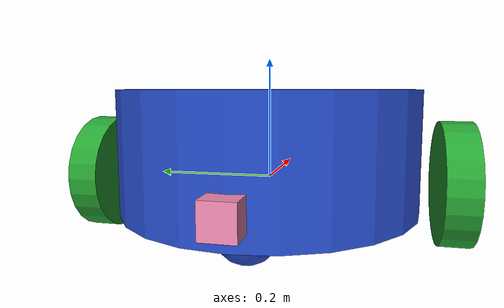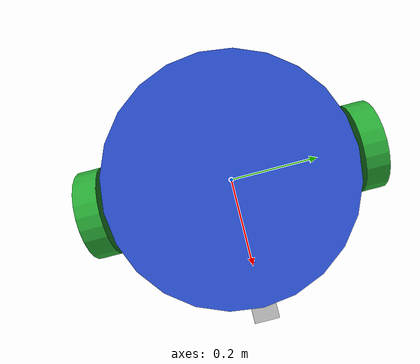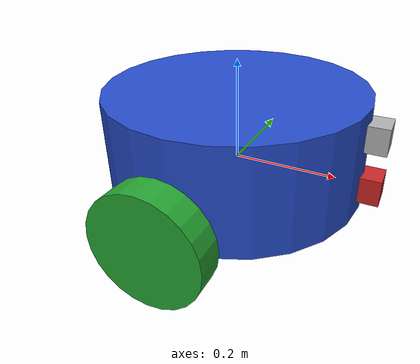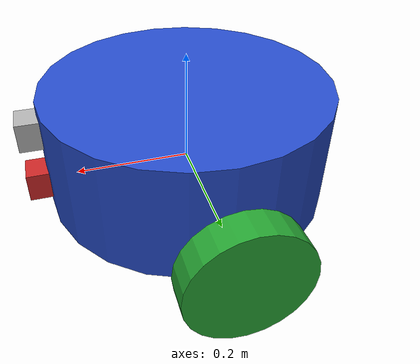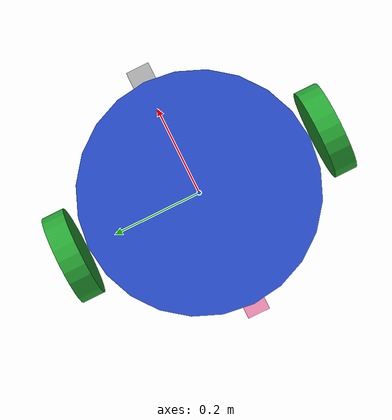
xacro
<?xml version='1.0'?>

<robot name="trixy" xmlns:xacro="http://www.ros.org/wiki/xacro">

  <xacro:include filename="$(find demo_gazebo)/robot/urdf/robot.gazebo" />

  <gazebo reference="left_wheel">
    <material>Gazebo/Green</material>
  </gazebo>

  <gazebo reference="right_wheel">
    <material>Gazebo/Green</material>
  </gazebo>

  <gazebo reference="camera">
    <material>Gazebo/Red</material>
  </gazebo>
   <gazebo reference="camera2">
    <material>Gazebo/pink</material>
  </gazebo>

  <gazebo reference="chassis">
    <material>Gazebo/Blue</material>
  </gazebo>
  <link name="robot_footprint"></link>

  <joint name="robot_footprint_joint" type="fixed">
    <origin xyz="0 0 0" rpy="0 0 0" />
    <parent link="robot_footprint"/>
    <child link="chassis" />
  </joint>

  <joint name="camera_joint" type="fixed">
    <origin xyz="0.26 0 0" rpy="0 0 0" />
    <parent link="chassis"/>
    <child link="camera" />
    <axis xyz="0 1 0"/>
  </joint>

 <joint name="camera_joint2" type="fixed">
    <origin xyz="-0.26 0 0" rpy="0 0 3.14" />
    <parent link="chassis"/>
    <child link="camera2" />
    <axis xyz="0 1 0"/>
  </joint>

  <joint type="continuous" name="left_wheel_hinge">
    <origin xyz="0 0.30 0" rpy="0 0 0" />
    <parent link="chassis"/>
    <child link="left_wheel" />
    <axis xyz="0 1 0" rpy="0 0 0" />
    <limit effort="10000" velocity="1000" />
    <dynamics damping="1.0" friction="1.0" />
  </joint>

  <joint type="continuous" name="right_wheel_hinge">
    <origin xyz="0 -0.30 0" rpy="0 0 0" />
    <parent link="chassis"/>
    <child link="right_wheel" />
    <axis xyz="0 1 0" rpy="0 0 0" />
    <limit effort="10000" velocity="1000" />
    <dynamics damping="1.0" friction="1.0" />
  </joint>
<link name="camera">
    <inertial>
      <mass value="0.1"/>
      <origin xyz="0 0 0" rpy="0 0 0"/>
      <inertia
        ixx="1e-6" ixy="0.0" ixz="0.0"
        iyy="1e-6" iyz="0.0"
        izz="1e-6"
      />
    </inertial>

    <collision>
      <origin xyz="0 0 0" rpy="0 0 0"/>
      <geometry>
        <box size="0.05 0.05 0.05"/>
      </geometry>
    </collision>

    <visual>
      <origin xyz="0 0 0" rpy="0 0 0"/>
      <geometry>
        <box size="0.05 0.05 0.05"/>
      </geometry>
    </visual>

  </link>

  <link name="camera2">
    <inertial>
      <mass value="0.1"/>
      <origin xyz="0 0 0" rpy="0 0 0"/>
      <inertia
        ixx="1e-6" ixy="0.0" ixz="0.0"
        iyy="1e-6" iyz="0.0"
        izz="1e-6"
      />
    </inertial>

    <collision>
      <origin xyz="0 0 0" rpy="0 0 0"/>
      <geometry>
        <box size="0.05 0.05 0.05"/>
      </geometry>
    </collision>

    <visual>
      <origin xyz="0 0 0" rpy="0 0 0"/>
      <geometry>
        <box size="0.05 0.05 0.05"/>
      </geometry>
    </visual>

  </link>

  <link name="left_wheel">
    <inertial>
      <mass value="5"/>
      <origin xyz="0 0 0" rpy="0 1.5707 1.5707"/>
      <inertia
        ixx="0.1" ixy="0.0" ixz="0.0"
        iyy="0.1" iyz="0.0"
        izz="0.1"
      />
    </inertial>

    <collision>
      <origin xyz="0 0 0" rpy="0 1.5707 1.5707"/>
      <geometry>
        <cylinder radius="0.1" length="0.05"/>
      </geometry>
    </collision>

    <visual>
      <origin xyz="0 0 0" rpy="0 1.5707 1.5707"/>
      <geometry>
        <cylinder radius="0.1" length="0.05"/>
      </geometry>
    </visual>

  </link>

  <link name="right_wheel">
    <inertial>
      <mass value="5"/>
      <origin xyz="0 0 0" rpy="0 1.5707 1.5707"/>
      <inertia
        ixx="0.1" ixy="0.0" ixz="0.0"
        iyy="0.1" iyz="0.0"
        izz="0.1"
      />
    </inertial>

    <collision>
      <origin xyz="0 0 0" rpy="0 1.5707 1.5707"/>
      <geometry>
        <cylinder radius="0.1" length="0.05"/>
      </geometry>
    </collision>

    <visual>
      <origin xyz="0 0 0" rpy="0 1.5707 1.5707"/>
      <geometry>
        <cylinder radius="0.1" length="0.05"/>
      </geometry>
    </visual>

  </link>

  <link name='chassis'>
    <pose>0 0 0.1 0 0 0</pose>

    <inertial>
      <mass value="15.0"/>
      <origin xyz="0.0 0 0" rpy=" 0 0 0"/>
      <inertia
          ixx="0.1" ixy="0" ixz="0"
          iyy="0.1" iyz="0"
          izz="0.1"
      />
    </inertial>

    <collision name='collision'>
      <origin xyz="0 0 0.05" rpy=" 0 0 0"/>
      <geometry>
        <cylinder length="0.2" radius="0.25"/>
      </geometry>
    </collision>

    <visual name='chassis_visual'>
      <origin xyz="0 0 0.05" rpy=" 0 0 0"/>
      <geometry>
       <cylinder length="0.2" radius="0.25"/>
      </geometry>
    </visual>

    <collision name='back_caster_collision'>
      <origin xyz="-0.15 0 -0.05" rpy=" 0 0 0"/>
      <geometry>
        <sphere radius="0.0499"/>
      </geometry>
    </collision>

    <visual name='back_caster_visual'>
      <origin xyz="-0.15 0 -0.05" rpy=" 0 0 0"/>
      <geometry>
        <sphere radius="0.05"/>
      </geometry>
    </visual>

    <collision name='front_caster_collision'>
      <origin xyz="0.15 0 -0.05" rpy=" 0 0 0"/>
      <geometry>
        <sphere radius="0.0499"/>
      </geometry>
    </collision>

    <visual name='front_caster_visual'>
      <origin xyz="0.15 0 -0.05" rpy=" 0 0 0"/>
      <geometry>
        <sphere radius="0.05"/>
      </geometry>
    </visual>

  </link>

  <joint name="imu_joint" type="fixed">
    <origin xyz="0.26 0 0" rpy="0 0 0" />
    <parent link="chassis"/>
    <child link="imu_link" />
    <axis xyz="1 0 0"/>
  </joint>

  <link name="imu_link">
    <inertial>
      <mass value="0.001" />
      <origin xyz="0 0 0" rpy="0 0 0"/>
      <inertia
        ixx="1e-6" ixy="0.0" ixz="0.0"
        iyy="1e-6" iyz="0.0"
        izz="1e-6"/>
    </inertial>

    <collision>
      <origin xyz="0 0 0" rpy="0 0 0"/>
      <geometry>
        <box size="0.001 0.001 0.001"/>
      </geometry>
    </collision>

    <visual>
      <origin xyz="0 0 0" rpy="0 0 0"/>
      <geometry>
        <box size="0.001 0.001 0.001"/>
      </geometry>
    </visual>

  </link>

    <joint name="hokuyo_joint" type="fixed">
    <origin xyz="0.26 0 0.1" rpy="0 0 0" />
    <parent link="chassis"/>
    <child link="hokuyo" />
    <axis xyz="0 1 0"/>
  </joint>

  <link name="hokuyo">
    <inertial>
      <mass value="1e-5"/>
      <origin xyz="0 0 0" rpy="0 0 0"/>
      <inertia
        ixx="1e-6" ixy="0.0" ixz="0.0"
        iyy="1e-6" iyz="0.0"
        izz="1e-6"
      />
    </inertial>

    <collision>
      <origin xyz="0 0 0" rpy="0 0 0"/>
      <geometry>
        <box size="0.05 0.05 0.05"/>
      </geometry>
    </collision>

    <visual>
      <origin xyz="0 0 0" rpy="0 0 0"/>
      <geometry>
         <box size="0.05 0.05 0.05"/>
      </geometry>
    </visual>

  </link>

</robot>
